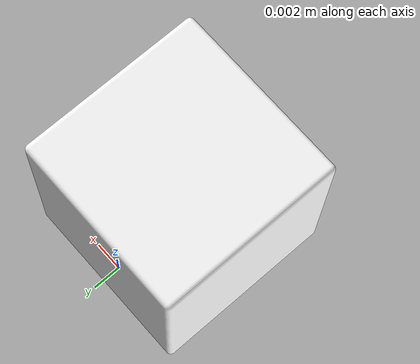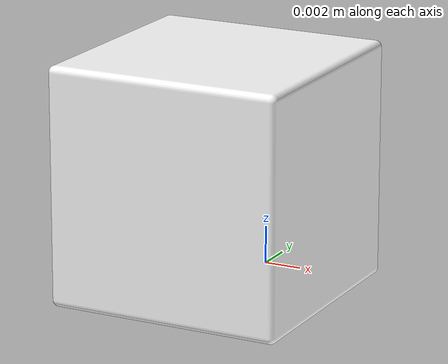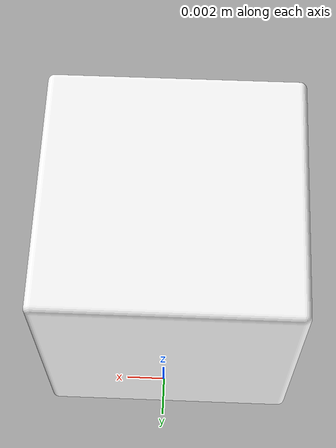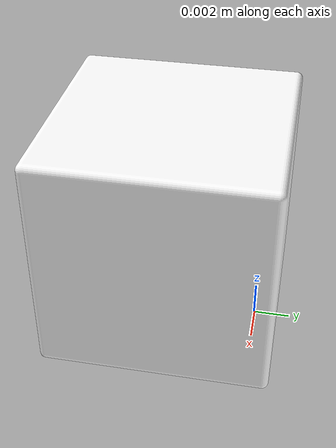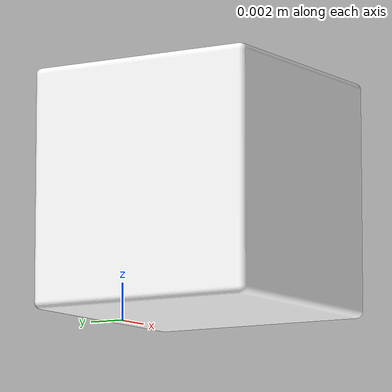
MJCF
<?xml version="1.0" ?>
<mujoco model="peginhole-square">
  <asset>
    <mesh file="../meshes/peginhole-square.stl" name="peginhole-square_mesh" scale="0.0007 0.0007 0.0007"/>
    <material name="peginhole-square" reflectance="0.7" texrepeat="15 15" texuniform="true"/>
  </asset>
  <worldbody>
    <body>
      <body name="object">
        <geom pos="0 0 0" mesh="peginhole-square_mesh" type="mesh" solimp="0.998 0.998 0.001" solref="0.001 1" density="50" friction="0.95 0.3 0.1" material="peginhole-square" group="0" condim="4"/>
      </body>
      <site rgba="0 0 0 0" size="0.005" pos="-0.006299999770278674 -0.006300000213189916 -0.0063000000048337055" name="bottom_site"/>
      <site rgba="0 0 0 0" size="0.005" pos="0.006300000229721326 0.006300000120596095 0.006299999995166294" name="top_site"/>
      <site rgba="0 0 0 0" size="0.005" pos="0.0063 0.0063000001668930055 0" name="horizontal_radius_site"/>
    </body>
  </worldbody>
</mujoco>
